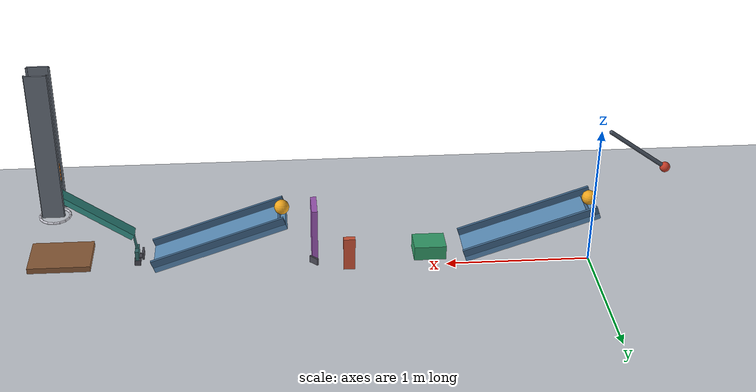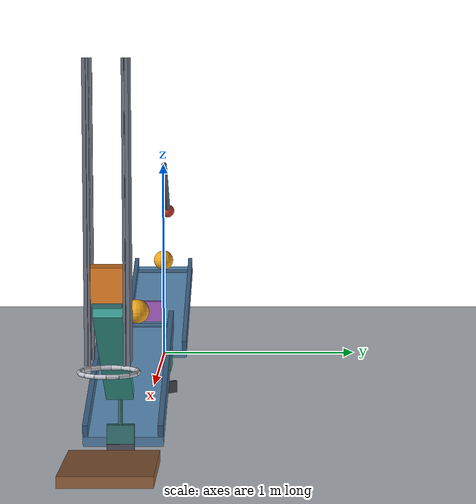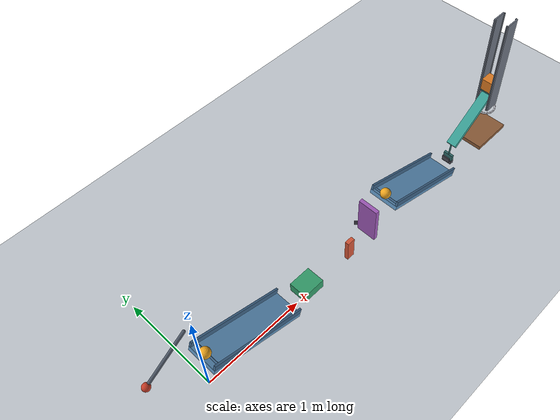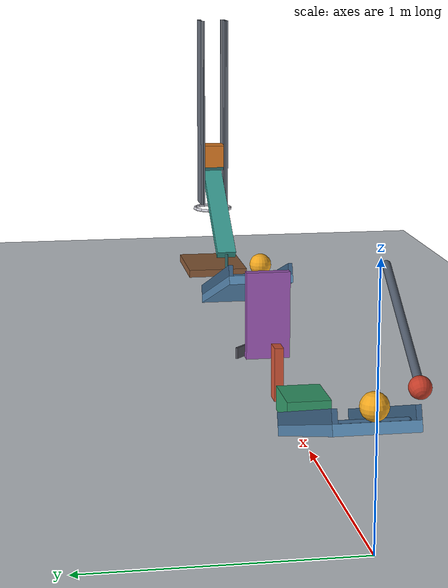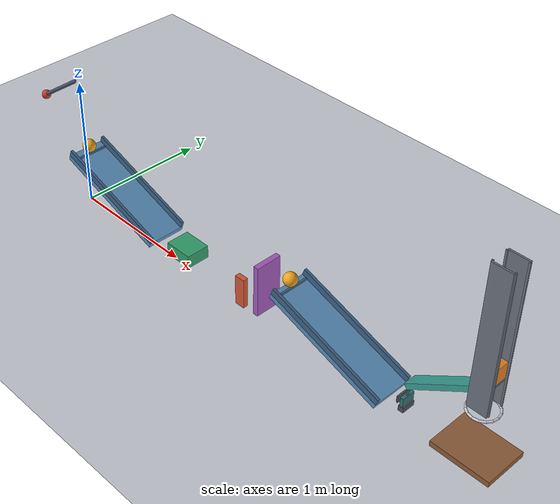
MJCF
<mujoco model="gravity_chain_feasible_alternative">
  <compiler angle="degree" autolimits="true"/>
  <option timestep="0.002" gravity="0 0 -9.81" integrator="implicitfast" solver="Newton" iterations="100" cone="elliptic"/>

  <visual>
    <headlight ambient="0.35 0.35 0.35" diffuse="0.65 0.65 0.65" specular="0.15 0.15 0.15"/>
  </visual>

  <worldbody>
    <light name="main_light" pos="1.8 -2 4" dir="0 0.4 -1" directional="true"/>
    <camera name="overview" pos="1.8 -4.5 2.3" xyaxes="1 0 0 0 0.36 0.93"/>

    <geom name="floor" type="plane" size="8 5 0.1" pos="0 0 0" friction="0.68 0.005 0.003" condim="6" solref="0.008 0.6901" rgba="0.78 0.80 0.83 1"/>

    <!-- The body frame supplies the 55-degree release angle; initial hinge velocity is zero. -->
    <body name="pendulum1" pos="-0.035084 0 1.013426" euler="0 55 0">
      <joint name="pendulum1_hinge" type="hinge" axis="0 -1 0" damping="0.04" range="-5 115"/>
      <geom name="pendulum1_rod" type="capsule" fromto="0 0 -0.035 0 0 -0.49" size="0.014" mass="0.08" friction="0.68 0.005 0.003" solref="0.008 0.6901" rgba="0.30 0.34 0.40 1"/>
      <geom name="pendulum1_bob" type="sphere" pos="0 0 -0.515" size="0.035" mass="0.32" friction="0.68 0.005 0.003" solref="0.008 0.6901" rgba="0.78 0.24 0.16 1"/>
    </body>

    <!-- Each ramp has a 0.95 m by 0.30 m running surface inclined at 19 degrees. -->
    <!-- Its low surface edge is at z=0.15. -->
    <body name="ramp1" pos="0.449121 0 0.304645" euler="0 19 0">
      <geom name="ramp1_surface" type="box" pos="0 0 -0.02" size="0.475 0.15 0.02" friction="0.68 0.005 0.003" solref="0.008 0.6901" rgba="0.35 0.55 0.72 1"/>
      <geom name="ramp1_release_detent" type="capsule" fromto="-0.414 -0.12 0.002 -0.414 0.12 0.002" size="0.01" friction="0.68 0.005 0.003" solref="0.008 0.6901" rgba="0.24 0.39 0.53 1"/>
      <geom name="ramp1_left_rail" type="box" pos="0 0.14 0.025" size="0.475 0.01 0.025" friction="0.68 0.005 0.003" solref="0.008 0.6901" rgba="0.24 0.39 0.53 1"/>
      <geom name="ramp1_right_rail" type="box" pos="0 -0.14 0.025" size="0.475 0.01 0.025" friction="0.68 0.005 0.003" solref="0.008 0.6901" rgba="0.24 0.39 0.53 1"/>
    </body>

    <body name="ball1" pos="0.039916 0 0.498426">
      <freejoint name="ball1_free"/>
      <geom name="ball1_sphere" type="sphere" size="0.05" mass="0.20" friction="0.68 0.005 0.003" condim="6" solref="0.008 0.6901" rgba="0.95 0.66 0.12 1"/>
    </body>

    <!-- The cart's initial leading face is 0.12 m beyond ramp1's low edge. -->
    <body name="cart1" pos="1.128243 0 0.15">
      <joint name="cart1_slide" type="slide" axis="1 0 0" damping="0.20" range="0 0.40"/>
      <geom name="cart1_box" type="box" size="0.11 0.09 0.05" mass="0.50" friction="0.68 0.005 0.003" solref="0.008 0.6901" rgba="0.20 0.62 0.42 1"/>
    </body>

    <!-- Initial cart-to-domino surface separation is 0.40 m. -->
    <body name="domino1" pos="1.678243 0 0.12">
      <freejoint name="domino1_free"/>
      <geom name="domino1_box" type="box" size="0.04 0.02 0.12" mass="0.25" friction="0.68 0.005 0.003" solref="0.008 0.6901" rgba="0.83 0.34 0.22 1"/>
    </body>

    <!-- The flap rotates clockwise when viewed from above. -->
    <!-- Its initial near face is 0.18 m beyond the domino's forward upper edge. -->
    <!-- A separate cam latch resists the spring until the domino adds contact torque. -->
    <body name="flap1" pos="1.918243 -0.10 0.32">
      <joint name="flap1_hinge" type="hinge" axis="0 0 -1" damping="0.04" stiffness="0.10" springref="143.239449" range="0 65" solreflimit="0.004 1"/>
      <geom name="flap1_panel" type="box" pos="0 0.10 0" size="0.02 0.10 0.20" mass="0.30" friction="0.68 0.005 0.003" solref="0.008 0.6901" rgba="0.63 0.35 0.73 1"/>
    </body>

    <body name="flap_latch" pos="1.918243 -0.10 0.15">
      <joint name="flap_latch_slide" type="slide" axis="0 1 0" damping="0.20" stiffness="1" springref="-0.30" range="0 0.08"/>
      <geom name="flap_latch_cam" type="box" pos="0.008485 0.22 0" euler="0 0 45" size="0.006 0.035 0.025" mass="0.025" friction="0.68 0.005 0.003" solref="0.008 0.6901" rgba="0.30 0.30 0.34 1"/>
    </body>

    <body name="ramp2" pos="2.562364 -0.005 0.304645" euler="0 19 0">
      <geom name="ramp2_surface" type="box" pos="0 0 -0.02" size="0.475 0.15 0.02" friction="0.68 0.005 0.003" solref="0.008 0.6901" rgba="0.35 0.55 0.72 1"/>
      <geom name="ramp2_release_detent" type="capsule" fromto="-0.434 -0.12 0.002 -0.434 0.12 0.002" size="0.01" friction="0.68 0.005 0.003" solref="0.008 0.6901" rgba="0.24 0.39 0.53 1"/>
      <geom name="ramp2_left_rail" type="box" pos="0 0.14 0.025" size="0.475 0.01 0.025" friction="0.68 0.005 0.003" solref="0.008 0.6901" rgba="0.24 0.39 0.53 1"/>
      <geom name="ramp2_right_rail" type="box" pos="0 -0.14 0.025" size="0.475 0.01 0.025" friction="0.68 0.005 0.003" solref="0.008 0.6901" rgba="0.24 0.39 0.53 1"/>
    </body>

    <body name="ball2" pos="2.134249 -0.005 0.504938">
      <freejoint name="ball2_free"/>
      <geom name="ball2_sphere" type="sphere" size="0.05" mass="0.20" friction="0.68 0.005 0.003" condim="6" solref="0.008 0.6901" rgba="0.95 0.66 0.12 1"/>
    </body>

    <!-- The main beam starts inclined 35 degrees and rotates an additional 40 degrees. -->
    <!-- A horizontal initial loading pad and a left-end drop arm are rigidly attached. -->
    <!-- The four geom masses sum to 0.55 kg. -->
    <body name="seesaw1" pos="3.403485 -0.005 0.52" euler="0 -35 0">
      <joint name="seesaw1_hinge" type="hinge" axis="0 -1 0" damping="0.04" stiffness="0.20" springref="429.718346" range="0 40" solreflimit="0.004 1"/>
      <geom name="seesaw1_beam" type="box" size="0.325 0.05 0.02" mass="0.50" friction="0.68 0.005 0.003" solref="0.008 0.6901" rgba="0.22 0.62 0.58 1"/>
      <geom name="seesaw1_loading_pad" type="box" pos="0.312952 0 0.037231" euler="0 35 0" size="0.06 0.05 0.008" mass="0.02" friction="0.68 0.005 0.003" solref="0.008 0.6901" rgba="0.20 0.43 0.43 1"/>
      <geom name="seesaw1_left_arm" type="capsule" fromto="-0.325 0 0 -0.407171 0 -0.093336" size="0.008" mass="0.02" friction="0.68 0.005 0.003" solref="0.008 0.6901" rgba="0.20 0.43 0.43 1"/>
      <geom name="seesaw1_left_striker" type="box" pos="-0.421511 0 -0.113815" euler="0 35 0" size="0.012 0.05 0.035" mass="0.01" friction="0.68 0.005 0.003" solref="0.008 0.6901" rgba="0.20 0.43 0.43 1"/>
    </body>

    <!-- This slider supports the left striker against the launcher preload. -->
    <!-- Ball2 pushes its forward trigger, withdrawing the support. -->
    <body name="seesaw_latch" pos="3.123485 -0.005 0.13">
      <joint name="seesaw_latch_slide" type="slide" axis="1 0 0" damping="0.20" range="0 0.38"/>
      <geom name="seesaw_latch_support" type="box" size="0.02 0.05 0.02" mass="0.025" friction="0.68 0.005 0.003" solref="0.008 0.6901" rgba="0.30 0.30 0.34 1"/>
      <geom name="seesaw_latch_trigger" type="box" pos="-0.04 0 0.045" size="0.006 0.04 0.025" mass="0.01" friction="0.68 0.005 0.003" solref="0.008 0.6901" rgba="0.30 0.30 0.34 1"/>
      <geom name="seesaw_latch_connector" type="box" pos="-0.02 0 0.025" size="0.02 0.02 0.006" mass="0.005" friction="0.68 0.005 0.003" solref="0.008 0.6901" rgba="0.30 0.30 0.34 1"/>
    </body>

    <body name="block1" pos="3.638485 -0.005 0.798">
      <freejoint name="block1_free"/>
      <geom name="block1_cube" type="box" size="0.06 0.06 0.06" mass="0.35" friction="0.68 0.005 0.003" solref="0.008 0.6901" rgba="0.88 0.49 0.14 1"/>
    </body>

    <!-- Corner guides constrain block1 without obstructing the narrower launching beam. -->
    <!-- The guide channel is 0.128 m square. -->
    <body name="block_guide" pos="3.638485 -0.005 1.04">
      <geom name="block_guide_left_front" type="box" pos="-0.070 -0.058 0" size="0.006 0.004 0.51" friction="0.68 0.005 0.003" solref="0.008 0.6901" rgba="0.42 0.45 0.50 1"/>
      <geom name="block_guide_left_back" type="box" pos="-0.070 0.058 0" size="0.006 0.004 0.51" friction="0.68 0.005 0.003" solref="0.008 0.6901" rgba="0.42 0.45 0.50 1"/>
      <geom name="block_guide_right_front" type="box" pos="0.070 -0.058 0" size="0.006 0.004 0.51" friction="0.68 0.005 0.003" solref="0.008 0.6901" rgba="0.42 0.45 0.50 1"/>
      <geom name="block_guide_right_back" type="box" pos="0.070 0.058 0" size="0.006 0.004 0.51" friction="0.68 0.005 0.003" solref="0.008 0.6901" rgba="0.42 0.45 0.50 1"/>
      <geom name="block_guide_front" type="box" pos="0 -0.070 0" size="0.070 0.006 0.51" friction="0.68 0.005 0.003" solref="0.008 0.6901" rgba="0.42 0.45 0.50 1"/>
      <geom name="block_guide_back" type="box" pos="0 0.070 0" size="0.070 0.006 0.51" friction="0.68 0.005 0.003" solref="0.008 0.6901" rgba="0.42 0.45 0.50 1"/>
    </body>

    <!-- Explicit departure from the brief: minimum clear diameter is approximately 0.18 m. -->
    <!-- The center remains 0.30 m below block1's initial center. -->
    <body name="ring1" pos="3.638485 -0.005 0.498">
      <geom name="ring1_segment_00" type="capsule" fromto="0.099920 0 0 0.092314 0.038238 0" size="0.008" friction="0.68 0.005 0.003" solref="0.008 0.6901" rgba="0.78 0.78 0.82 1"/>
      <geom name="ring1_segment_01" type="capsule" fromto="0.092314 0.038238 0 0.070654 0.070654 0" size="0.008" friction="0.68 0.005 0.003" solref="0.008 0.6901" rgba="0.78 0.78 0.82 1"/>
      <geom name="ring1_segment_02" type="capsule" fromto="0.070654 0.070654 0 0.038238 0.092314 0" size="0.008" friction="0.68 0.005 0.003" solref="0.008 0.6901" rgba="0.78 0.78 0.82 1"/>
      <geom name="ring1_segment_03" type="capsule" fromto="0.038238 0.092314 0 0 0.099920 0" size="0.008" friction="0.68 0.005 0.003" solref="0.008 0.6901" rgba="0.78 0.78 0.82 1"/>
      <geom name="ring1_segment_04" type="capsule" fromto="0 0.099920 0 -0.038238 0.092314 0" size="0.008" friction="0.68 0.005 0.003" solref="0.008 0.6901" rgba="0.78 0.78 0.82 1"/>
      <geom name="ring1_segment_05" type="capsule" fromto="-0.038238 0.092314 0 -0.070654 0.070654 0" size="0.008" friction="0.68 0.005 0.003" solref="0.008 0.6901" rgba="0.78 0.78 0.82 1"/>
      <geom name="ring1_segment_06" type="capsule" fromto="-0.070654 0.070654 0 -0.092314 0.038238 0" size="0.008" friction="0.68 0.005 0.003" solref="0.008 0.6901" rgba="0.78 0.78 0.82 1"/>
      <geom name="ring1_segment_07" type="capsule" fromto="-0.092314 0.038238 0 -0.099920 0 0" size="0.008" friction="0.68 0.005 0.003" solref="0.008 0.6901" rgba="0.78 0.78 0.82 1"/>
      <geom name="ring1_segment_08" type="capsule" fromto="-0.099920 0 0 -0.092314 -0.038238 0" size="0.008" friction="0.68 0.005 0.003" solref="0.008 0.6901" rgba="0.78 0.78 0.82 1"/>
      <geom name="ring1_segment_09" type="capsule" fromto="-0.092314 -0.038238 0 -0.070654 -0.070654 0" size="0.008" friction="0.68 0.005 0.003" solref="0.008 0.6901" rgba="0.78 0.78 0.82 1"/>
      <geom name="ring1_segment_10" type="capsule" fromto="-0.070654 -0.070654 0 -0.038238 -0.092314 0" size="0.008" friction="0.68 0.005 0.003" solref="0.008 0.6901" rgba="0.78 0.78 0.82 1"/>
      <geom name="ring1_segment_11" type="capsule" fromto="-0.038238 -0.092314 0 0 -0.099920 0" size="0.008" friction="0.68 0.005 0.003" solref="0.008 0.6901" rgba="0.78 0.78 0.82 1"/>
      <geom name="ring1_segment_12" type="capsule" fromto="0 -0.099920 0 0.038238 -0.092314 0" size="0.008" friction="0.68 0.005 0.003" solref="0.008 0.6901" rgba="0.78 0.78 0.82 1"/>
      <geom name="ring1_segment_13" type="capsule" fromto="0.038238 -0.092314 0 0.070654 -0.070654 0" size="0.008" friction="0.68 0.005 0.003" solref="0.008 0.6901" rgba="0.78 0.78 0.82 1"/>
      <geom name="ring1_segment_14" type="capsule" fromto="0.070654 -0.070654 0 0.092314 -0.038238 0" size="0.008" friction="0.68 0.005 0.003" solref="0.008 0.6901" rgba="0.78 0.78 0.82 1"/>
      <geom name="ring1_segment_15" type="capsule" fromto="0.092314 -0.038238 0 0.099920 0 0" size="0.008" friction="0.68 0.005 0.003" solref="0.008 0.6901" rgba="0.78 0.78 0.82 1"/>
    </body>

    <!-- For an upright falling cube, first contact occurs at center z=0.248. -->
    <!-- That is 0.25 m below the ring center. -->
    <body name="door1" pos="3.848485 -0.005 0.168">
      <joint name="door1_hinge" type="hinge" axis="0 -1 0" damping="0.04" stiffness="1.2" springref="-57.295780" range="0 75"/>
      <geom name="door1_panel" type="box" pos="-0.21 0 0" size="0.21 0.16 0.02" mass="0.45" friction="0.68 0.005 0.003" solref="0.008 0.6901" rgba="0.55 0.36 0.22 1"/>
    </body>
  </worldbody>

  <!-- Reference positions are used, and all initial generalized velocities are zero. -->
  <keyframe>
    <key name="start"/>
  </keyframe>
</mujoco>
